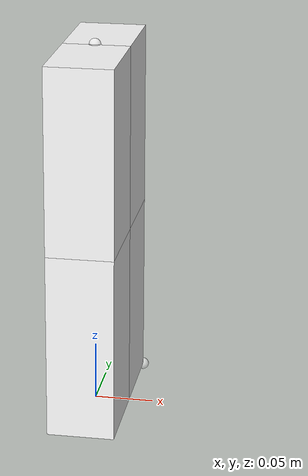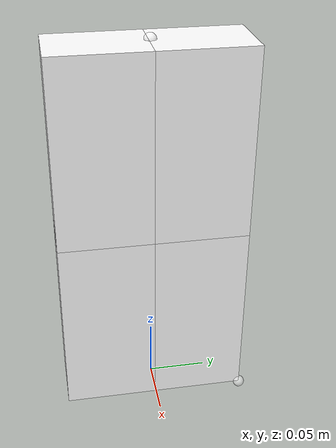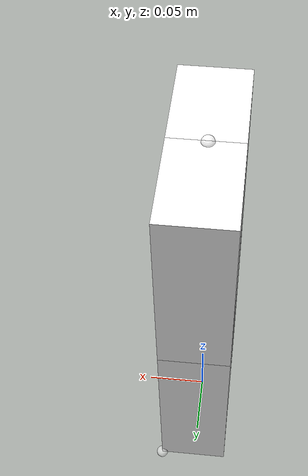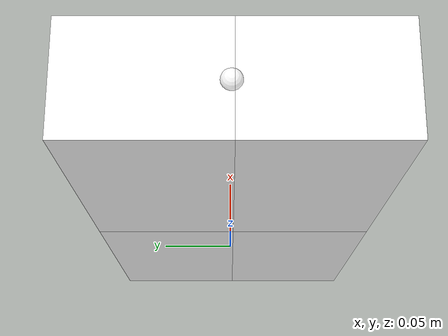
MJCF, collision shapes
<mujoco model="longbox_a09">
  <default>
    <default class="visual">
      <geom group="1" type="mesh" contype="0" conaffinity="0" density="100"/>
    </default>
    <default class="collision">
      <geom group="0" type="mesh" density="100" solimp="0.95 0.98 0.001" solref="0.004 1" rgba="1 1 1 0.25"/>
    </default>
  </default>
  <asset>
    <texture type="2d" name="T_LongBox_A01_Tile_Albedo" file="textures/T_LongBox_A01_Tile_Albedo.png"/>
    <material name="opaque__cardboard__longbox.010" texture="T_LongBox_A01_Tile_Albedo" specular="0.5" shininess="0.25"/>
    <texture type="2d" name="T_LongBox_A01_Trim_Albedo" file="textures/T_LongBox_A01_Trim_Albedo.png"/>
    <material name="opaque__cardboard__longbox_decal.010" texture="T_LongBox_A01_Trim_Albedo" specular="0.5" shininess="0.25"/>
    <mesh file="meshes/longbox_a09_0.obj" name="longbox_a09_0"/>
    <mesh file="meshes/longbox_a09_1.obj" name="longbox_a09_1"/>
  </asset>
  <worldbody>
    <body>
      <body name="object">
        <geom mesh="longbox_a09_0" material="opaque__cardboard__longbox_decal.010" class="visual"/>
        <geom mesh="longbox_a09_1" material="opaque__cardboard__longbox.010" class="visual"/>
        <geom name="collider_box_c4846f1f" type="box" pos="0.0015179705805614284 0.03787427012411187 0.07865761327720289" size="0.028126840637278307 0.039094279180034226 0.078358102870262" quat="6.992861943372707e-05 -1.4743387621031002e-05 -0.00031050055650561504 0.9999999492410115" class="collision"/>
        <geom name="collider_box_b2372300" type="box" pos="0.0015133427197416792 0.03777694951400417 0.23537378873139136" size="0.028126840637278307 0.039094279180034226 0.078358102870262" quat="6.992861943372707e-05 -1.4743387621031002e-05 -0.00031050055650561504 0.9999999492410115" class="collision"/>
        <geom name="collider_box_0b1606bf" type="box" pos="0.0015070360611010843 -0.04031427239485967 0.0786090579366788" size="0.028126840637278307 0.039094279180034226 0.078358102870262" quat="6.992861943372707e-05 -1.4743387621031002e-05 -0.00031050055650561504 0.9999999492410115" class="collision"/>
        <geom name="collider_box_fd869c00" type="box" pos="0.0015024082002813351 -0.04041159300496737 0.2353252333908673" size="0.028126840637278307 0.039094279180034226 0.078358102870262" quat="6.992861943372707e-05 -1.4743387621031002e-05 -0.00031050055650561504 0.9999999492410115" class="collision"/>
      </body>
      <site name="bottom_site" pos="0 0 0.000316" rgba="1 1 1 0.5" size="0.005"/>
      <site name="top_site" pos="0 0 0.313668" rgba="1 1 1 0.5" size="0.005"/>
      <site name="horizontal_radius_site" pos="0.029652 0.077008 0" rgba="1 1 1 0.5" size="0.005"/>
    </body>
  </worldbody>
</mujoco>
